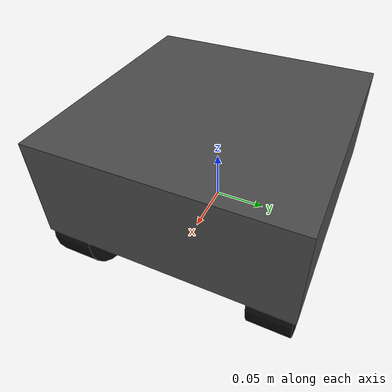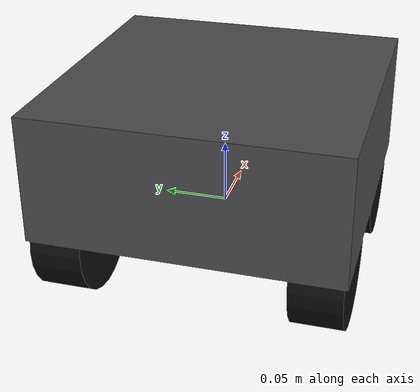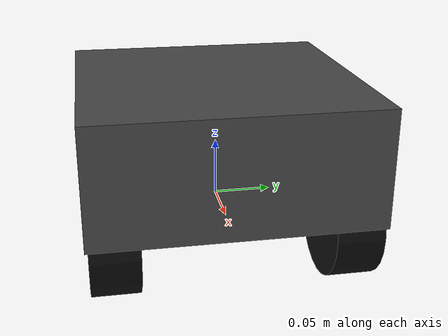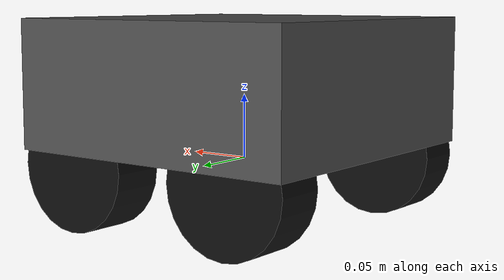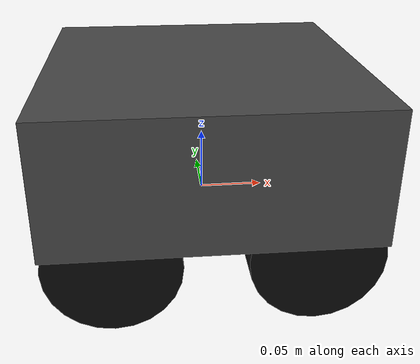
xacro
<?xml version="1.0"?>
<robot name="mecanum_robot" xmlns:xacro="http://www.ros.org/wiki/xacro">

  <xacro:arg name="controllers_file" default=""/>

  <!-- Real geometry (see header) -->
  <xacro:property name="wheelbase" value="0.142"/>
  <xacro:property name="track_width" value="0.195"/>
  <xacro:property name="wheel_radius" value="0.0485"/>  <!-- 97mm diameter / 2 -->

  <!-- Placeholder geometry (see header) -->
  <xacro:property name="wheel_width" value="0.04"/>
  <xacro:property name="chassis_length" value="0.24"/>
  <xacro:property name="chassis_width" value="0.24"/>
  <xacro:property name="chassis_height" value="0.10"/>
  <xacro:property name="chassis_mass" value="2.0"/>
  <xacro:property name="wheel_mass" value="0.15"/>
  <xacro:property name="ground_clearance" value="0.01"/>

  <xacro:property name="half_wb" value="${wheelbase / 2.0}"/>
  <xacro:property name="half_tw" value="${track_width / 2.0}"/>

  <material name="chassis_grey">
    <color rgba="0.3 0.3 0.3 1.0"/>
  </material>
  <material name="wheel_black">
    <color rgba="0.05 0.05 0.05 1.0"/>
  </material>

  <!-- base_link origin sits at wheel-axle height, so wheel cylinders
       (centered on base_link's own z=0) touch the ground correctly. -->
  <link name="base_link">
    <visual>
      <origin xyz="0 0 ${ground_clearance + chassis_height / 2.0}" rpy="0 0 0"/>
      <geometry>
        <box size="${chassis_length} ${chassis_width} ${chassis_height}"/>
      </geometry>
      <material name="chassis_grey"/>
    </visual>
    <collision>
      <origin xyz="0 0 ${ground_clearance + chassis_height / 2.0}" rpy="0 0 0"/>
      <geometry>
        <box size="${chassis_length} ${chassis_width} ${chassis_height}"/>
      </geometry>
    </collision>
    <inertial>
      <mass value="${chassis_mass}"/>
      <origin xyz="0 0 ${ground_clearance + chassis_height / 2.0}" rpy="0 0 0"/>
      <inertia ixx="0.02" ixy="0" ixz="0" iyy="0.03" iyz="0" izz="0.04"/>
    </inertial>
  </link>

  <xacro:macro name="wheel" params="prefix x_offset y_offset">
    <link name="${prefix}_wheel_link">
      <visual>
        <origin xyz="0 0 0" rpy="${pi/2} 0 0"/>
        <geometry>
          <cylinder radius="${wheel_radius}" length="${wheel_width}"/>
        </geometry>
        <material name="wheel_black"/>
      </visual>
      <collision>
        <origin xyz="0 0 0" rpy="${pi/2} 0 0"/>
        <geometry>
          <cylinder radius="${wheel_radius}" length="${wheel_width}"/>
        </geometry>
      </collision>
      <inertial>
        <mass value="${wheel_mass}"/>
        <origin xyz="0 0 0" rpy="0 0 0"/>
        <inertia ixx="0.0005" ixy="0" ixz="0" iyy="0.0005" iyz="0" izz="0.0008"/>
      </inertial>
    </link>

    <joint name="${prefix}_wheel_joint" type="continuous">
      <parent link="base_link"/>
      <child link="${prefix}_wheel_link"/>
      <origin xyz="${x_offset} ${y_offset} 0" rpy="0 0 0"/>
      <axis xyz="0 1 0"/>
    </joint>
  </xacro:macro>

  <xacro:wheel prefix="front_left"  x_offset="${half_wb}"  y_offset="${half_tw}"/>
  <xacro:wheel prefix="front_right" x_offset="${half_wb}"  y_offset="${-half_tw}"/>
  <xacro:wheel prefix="rear_left"   x_offset="${-half_wb}" y_offset="${half_tw}"/>
  <xacro:wheel prefix="rear_right"  x_offset="${-half_wb}" y_offset="${-half_tw}"/>

  <!-- LIDAR mount, reuses ydlidar_launch.py's real (0,0,0.02) static
       transform exactly, not a separate guess. -->
  <link name="laser_frame">
    <visual>
      <geometry>
        <cylinder radius="0.03" length="0.03"/>
      </geometry>
      <material name="wheel_black"/>
    </visual>
  </link>
  <joint name="laser_joint" type="fixed">
    <parent link="base_link"/>
    <child link="laser_frame"/>
    <origin xyz="0 0 0.02" rpy="0 0 0"/>
  </joint>

  <gazebo reference="laser_frame">
    <sensor name="lidar" type="gpu_lidar">
      <pose>0 0 0 0 0 0</pose>
      <topic>scan</topic>
      <update_rate>10</update_rate>
      <lidar>
        <scan>
          <horizontal>
            <samples>360</samples>
            <min_angle>-3.14159</min_angle>
            <max_angle>3.14159</max_angle>
          </horizontal>
        </scan>
        <range>
          <min>0.15</min>
          <max>8.0</max>
        </range>
      </lidar>
      <always_on>true</always_on>
      <visualize>false</visualize>
    </sensor>
  </gazebo>

  <!-- ros2_control: 4 independently driven wheel joints, velocity
       command/state. mecanum_drive_controller (config/) converts
       vx/vy/omega into these 4 wheel speeds. -->
  <ros2_control name="MecanumSimSystem" type="system">
    <hardware>
      <plugin>gz_ros2_control/GazeboSimSystem</plugin>
    </hardware>
    <joint name="front_left_wheel_joint">
      <command_interface name="velocity"/>
      <state_interface name="velocity"/>
      <state_interface name="position"/>
    </joint>
    <joint name="front_right_wheel_joint">
      <command_interface name="velocity"/>
      <state_interface name="velocity"/>
      <state_interface name="position"/>
    </joint>
    <joint name="rear_left_wheel_joint">
      <command_interface name="velocity"/>
      <state_interface name="velocity"/>
      <state_interface name="position"/>
    </joint>
    <joint name="rear_right_wheel_joint">
      <command_interface name="velocity"/>
      <state_interface name="velocity"/>
      <state_interface name="position"/>
    </joint>
  </ros2_control>

  <gazebo>
    <plugin filename="gz_ros2_control-system" name="gz_ros2_control::GazeboSimROS2ControlPlugin">
      <parameters>$(arg controllers_file)</parameters>
    </plugin>
  </gazebo>

</robot>
